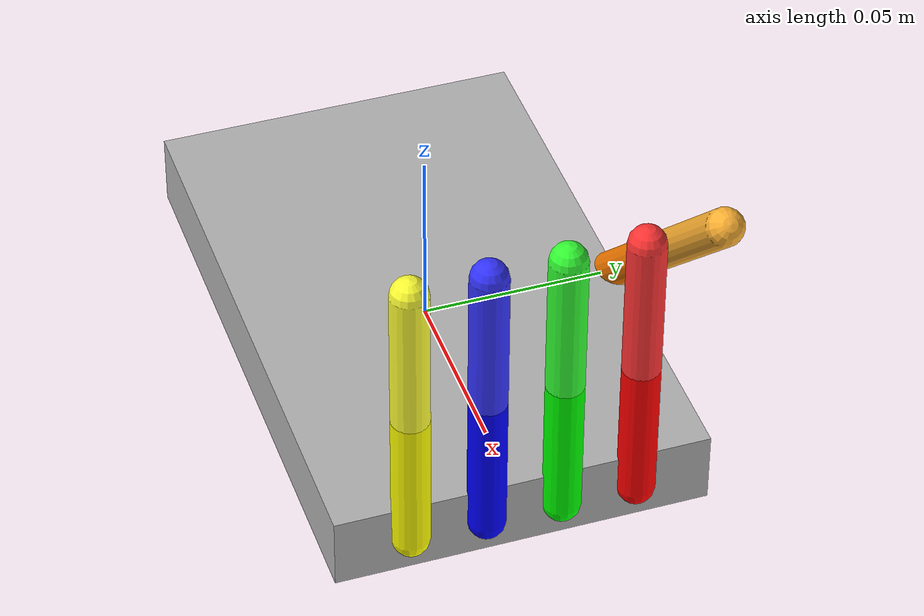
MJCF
<mujoco model="simple_hand">
  <compiler angle="degree" autolimits="true"/>

  <option timestep="0.002"/>

  <worldbody>
    <!-- 手掌 -->
    <body name="palm" pos="0 0 0">
      <geom type="box" size="0.08 0.05 0.01" rgba="0.7 0.7 0.7 1"/>

      <!-- === 五根手指，每根 2 关节 === -->

      <!-- Finger 1 -->
      <body name="finger1_base" pos="0.08 0.03 0">
<!--        axis是一个法向量，假如这样就有倒进去-->
        <joint name="f1_j1" type="hinge" axis="0 1 0" range="0 90"/>
        <geom type="capsule" size="0.005 0.02" fromto="0 0 0 0 0 0.04" rgba="1 0 0 1"/>
        <body pos="0 0 0.04">
          <joint name="f1_j2" type="hinge" axis="0 1 0" range="0 90"/>
          <geom type="capsule" size="0.005 0.02" fromto="0 0 0 0 0 0.04" rgba="1 0.2 0.2 1"/>
        </body>
      </body>

      <!-- Finger 2 -->
      <body name="finger2_base" pos="0.08 0.01 0">
        <joint name="f2_j1" type="hinge" axis="0 1 0" range="0 90"/>
        <geom type="capsule" size="0.005 0.02" fromto="0 0 0 0 0 0.04" rgba="0 1 0 1"/>
        <body pos="0 0 0.04">
          <joint name="f2_j2" type="hinge" axis="0 1 0" range="0 90"/>
          <geom type="capsule" size="0.005 0.02" fromto="0 0 0 0 0 0.04" rgba="0.2 1 0.2 1"/>
        </body>
      </body>

      <!-- Finger 3 -->
      <body name="finger3_base" pos="0.08 -0.01 0">
        <joint name="f3_j1" type="hinge" axis="0 1 0" range="0 90"/>
        <geom type="capsule" size="0.005 0.02" fromto="0 0 0 0 0 0.04" rgba="0 0 1 1"/>
        <body pos="0 0 0.04">
          <joint name="f3_j2" type="hinge" axis="0 1 0" range="0 90"/>
          <geom type="capsule" size="0.005 0.02" fromto="0 0 0 0 0 0.04" rgba="0.2 0.2 1 1"/>
        </body>
      </body>

       Finger 4
      <body name="finger4_base" pos="0.08 -0.03 0">
        <joint name="f4_j1" type="hinge" axis="0 1 0" range="0 90"/>
        <geom type="capsule" size="0.005 0.02" fromto="0 0 0 0 0 0.04" rgba="1 1 0 1"/>
        <body pos="0 0 0.04">
          <joint name="f4_j2" type="hinge" axis="0 1 0" range="0 90"/>
          <geom type="capsule" size="0.005 0.02" fromto="0 0 0 0 0 0.04" rgba="1 1 0.2 1"/>
        </body>
      </body>

<!--       Thumb-->
      <body name="thumb_base" pos="0 0.05 0">
        <joint name="t_j1" type="hinge" axis="1 0 0" range="0 90"/>
        <geom type="capsule" size="0.005 " fromto="0 0 0 0.04 0 0.04" rgba="1 0.5 0 1"/>
        <body pos="0.04 0 0.04">
          <joint name="t_j2" type="hinge" axis="1 0 0" range="0 90"/>
          <geom type="capsule" size="0.005" fromto="0 0 0 0.04 0 0.04" rgba="1 0.7 0.2 1"/>
        </body>
      </body>

    </body>
  </worldbody>

  <actuator>
<!--     为每个关节添加 motor-->
    <motor joint="f1_j1" ctrlrange="0 1"/>
    <motor joint="f1_j2" ctrlrange="0 1"/>

    <motor joint="f2_j1" ctrlrange="0 1"/>
    <motor joint="f2_j2" ctrlrange="0 1"/>

    <motor joint="f3_j1" ctrlrange="0 1"/>
    <motor joint="f3_j2" ctrlrange="0 1"/>

    <motor joint="f4_j1" ctrlrange="0 1"/>
    <motor joint="f4_j2" ctrlrange="0 1"/>

    <motor joint="t_j1" ctrlrange="0 1"/>
    <motor joint="t_j2" ctrlrange="0 1"/>
  </actuator>

</mujoco>
